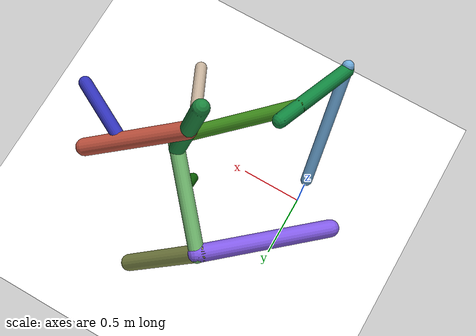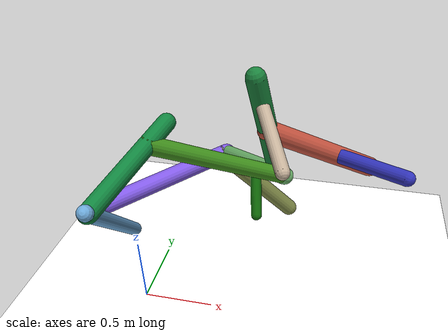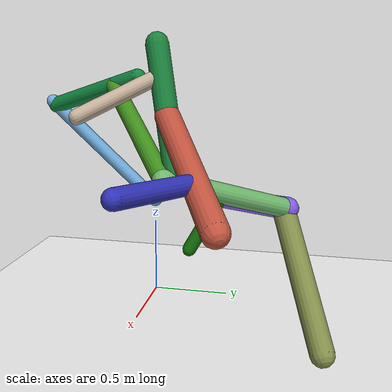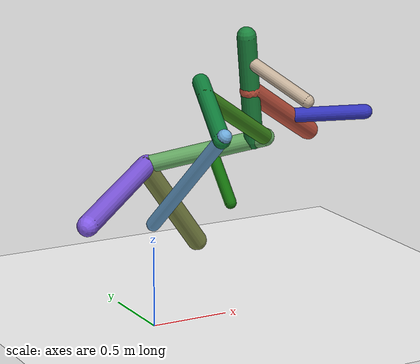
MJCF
<mujoco model="morphology">
  <option timestep="0.01"/>
  <default>
    <default class="/"/>
    <default class="0/"/>
    <default class="0/1/"/>
    <default class="0/1/2/"/>
    <default class="0/1/2/3/"/>
    <default class="0/1/2/3/4/"/>
    <default class="0/1/2/3/4/5/"/>
    <default class="0/1/2/3/4/6/"/>
    <default class="0/1/2/3/4/6/7/"/>
    <default class="0/1/2/3/8/"/>
    <default class="0/1/2/3/8/9/"/>
    <default class="0/1/2/3/10/"/>
  </default>
  <asset>
    <texture name="texplane" type="2d" builtin="checker" rgb1="0.10000000000000001 0.20000000000000001 0.29999999999999999" rgb2="0.20000000000000001 0.29999999999999999 0.40000000000000002" width="300" height="300"/>
    <material name="MatPlane" class="/" texture="texplane" texrepeat="20 20" specular="1" shininess="1" reflectance="0.5"/>
  </asset>
  <worldbody>
    <light name="//unnamed_light_0" class="/" directional="true" pos="0 0 1.5" dir="0 0 -1.3" cutoff="100" exponent="1" diffuse="1 1 1" specular="0.10000000000000001 0.10000000000000001 0.10000000000000001"/>
    <geom name="ground" class="/" type="plane" size="15 15 0.5" material="MatPlane" rgba="1 1 1 1"/>
    <site name="body" class="/" size="9.9999999999999995e-07 9.9999999999999995e-07 9.9999999999999995e-07" pos="0 0 0.64906880855560301"/>
    <body pos="0 0 0.64906880855560301" name="0/">
      <freejoint name="0/"/>
      <geom name="0/geom" class="0/" type="capsule" contype="1" conaffinity="1" condim="3" size="0.04353381015723555" rgba="0.42503061692901922 0.6614471519441858 0.85035949658639498 1" friction="0.59999999999999998 0.10000000000000001 0.10000000000000001" fromto="0 0 0 0.11749952604805358 -0.66464146303834526 0.67153993454337679"/>
      <site name="0/end0" class="0/" size="0.0050000000000000001" pos="0.11749952604805358 -0.66464146303834526 0.67153993454337679"/>
      <site name="0/attach1" class="0/" size="9.9999999999999995e-07 9.9999999999999995e-07 9.9999999999999995e-07" pos="0.11332940405267732 -0.64105297653737203 0.64770661754201631"/>
      <body pos="0.11332940405267732 -0.64105297653737203 0.64770661754201631" name="0/1/">
        <geom name="0/1/geom" class="0/1/" type="capsule" contype="1" conaffinity="1" condim="3" size="0.052210280440735654" rgba="0.061347893849859059 0.51456053378522848 0.24090498683330852 1" friction="0.59999999999999998 0.10000000000000001 0.10000000000000001" fromto="0 0 0 0.20288729687383567 0.62417572491706141 0.19652056738279344"/>
        <site name="0/1/end1" class="0/1/" size="0.0050000000000000001" pos="0.20288729687383567 0.62417572491706141 0.19652056738279344"/>
        <site name="0/1/attach2" class="0/1/" size="9.9999999999999995e-07 9.9999999999999995e-07 9.9999999999999995e-07" pos="0.14735775788725064 0.45334102611965382 0.14273357984687771"/>
        <body pos="0.14735775788725064 0.45334102611965382 0.14273357984687771" name="0/1/2/">
          <joint name="0/1/2/joint/" class="0/1/" type="hinge" axis="2.7755575615628914e-17 -0.30031479760854007 0.95384014506485393" limited="true" range="-35.013465774508759 35.013465774508759"/>
          <geom name="0/1/2/geom" class="0/1/2/" type="capsule" contype="1" conaffinity="1" condim="3" size="0.052699470052900772" rgba="0.25323495684970787 0.56608703312154662 0.11252545274975101 1" friction="0.59999999999999998 0.10000000000000001 0.10000000000000001" fromto="0 0 0 0.69652851433841168 0.49137260228914026 -0.42824395575534918"/>
          <site name="0/1/2/end2" class="0/1/2/" size="0.0050000000000000001" pos="0.69652851433841168 0.49137260228914026 -0.42824395575534918"/>
          <site name="0/1/2/attach3" class="0/1/2/" size="9.9999999999999995e-07 9.9999999999999995e-07 9.9999999999999995e-07" pos="0.69399405321285357 0.48958464281148834 -0.42668570273946499"/>
          <body pos="0.69399405321285357 0.48958464281148834 -0.42668570273946499" name="0/1/2/3/">
            <joint name="0/1/2/3/joint/" class="0/1/2/" type="hinge" axis="0 0.65701998940238215 0.75387315479840078" limited="true" range="-36.421717875796084 36.421717875796084"/>
            <geom name="0/1/2/3/geom" class="0/1/2/3/" type="capsule" contype="1" conaffinity="1" condim="3" size="0.058136188378610273" rgba="0.43210828782000399 0.71075076910117874 0.42200533825455633 1" friction="0.59999999999999998 0.10000000000000001 0.10000000000000001" fromto="0 0 0 -0.54550044891232852 0.62323641745530622 -0.26097306439067891"/>
            <site name="0/1/2/3/end3" class="0/1/2/3/" size="0.0050000000000000001" pos="-0.54550044891232852 0.62323641745530622 -0.26097306439067891"/>
            <site name="0/1/2/3/attach4" class="0/1/2/3/" size="9.9999999999999995e-07 9.9999999999999995e-07 9.9999999999999995e-07" pos="-0.052289979807099214 0.059741508460288077 -0.025016067895809558"/>
            <body pos="-0.052289979807099214 0.059741508460288077 -0.025016067895809558" name="0/1/2/3/4/">
              <joint name="0/1/2/3/4/joint/" class="0/1/2/3/" type="hinge" axis="0 0.38624311599782724 0.92239701611848735" limited="true" range="-47.974241820826222 47.974241820826222"/>
              <geom name="0/1/2/3/4/geom" class="0/1/2/3/4/" type="capsule" contype="1" conaffinity="1" condim="3" size="0.061688310551178724" rgba="0.10577553878162504 0.51197180052503699 0.23789610363448155 1" friction="0.59999999999999998 0.10000000000000001 0.10000000000000001" fromto="0 0 0 -0.131878554910557 -0.13235939071999303 0.70276543950590109"/>
              <site name="0/1/2/3/4/end4" class="0/1/2/3/4/" size="0.0050000000000000001" pos="-0.131878554910557 -0.13235939071999303 0.70276543950590109"/>
              <site name="0/1/2/3/4/attach5" class="0/1/2/3/4/" size="9.9999999999999995e-07 9.9999999999999995e-07 9.9999999999999995e-07" pos="-0.10247542711632876 -0.10284905765071095 0.54607960046881554"/>
              <body pos="-0.10247542711632876 -0.10284905765071095 0.54607960046881554" name="0/1/2/3/4/5/">
                <joint name="0/1/2/3/4/5/joint/" class="0/1/2/3/4/" type="hinge" axis="0.98341746940689378 -0.033566619236143375 0.17822279017677883" limited="true" range="-64.010133863230934 64.010133863230934"/>
                <geom name="0/1/2/3/4/5/geom" class="0/1/2/3/4/5/" type="capsule" contype="1" conaffinity="1" condim="3" size="0.041797088924894275" rgba="0.76428675282517922 0.68625831401048942 0.59904685848753081 1" friction="0.59999999999999998 0.10000000000000001 0.10000000000000001" fromto="0 0 0 0.19149675959025592 -0.39809810202148976 -0.20507818736346639"/>
                <site name="0/1/2/3/4/5/end5" class="0/1/2/3/4/5/" size="0.0050000000000000001" pos="0.19149675959025592 -0.39809810202148976 -0.20507818736346639"/>
              </body>
              <site name="0/1/2/3/4/attach6" class="0/1/2/3/4/" size="9.9999999999999995e-07 9.9999999999999995e-07 9.9999999999999995e-07" pos="-0.064209170482306011 -0.064443280330438751 0.34216318145820768"/>
              <body pos="-0.064209170482306011 -0.064443280330438751 0.34216318145820768" name="0/1/2/3/4/6/">
                <joint name="0/1/2/3/4/6/joint/" class="0/1/2/3/4/" type="hinge" axis="0.98341746940689378 -0.033566619236143375 0.17822279017677883" limited="true" range="-56.349977757106686 56.349977757106686"/>
                <geom name="0/1/2/3/4/6/geom" class="0/1/2/3/4/6/" type="capsule" contype="1" conaffinity="1" condim="3" size="0.066744560987104767" rgba="0.76347377090547075 0.32704354800325064 0.24831995658214856 1" friction="0.59999999999999998 0.10000000000000001 0.10000000000000001" fromto="0 0 0 0.66442338285563474 0.37356227437051204 -0.40888148541910319"/>
                <site name="0/1/2/3/4/6/end6" class="0/1/2/3/4/6/" size="0.0050000000000000001" pos="0.66442338285563474 0.37356227437051204 -0.40888148541910319"/>
                <site name="0/1/2/3/4/6/attach7" class="0/1/2/3/4/6/" size="9.9999999999999995e-07 9.9999999999999995e-07 9.9999999999999995e-07" pos="0.4177919082263275 0.23489735532762573 -0.25710620733644413"/>
                <body pos="0.4177919082263275 0.23489735532762573 -0.25710620733644413" name="0/1/2/3/4/6/7/">
                  <joint name="0/1/2/3/4/6/7/joint/" class="0/1/2/3/4/6/" type="hinge" axis="-0.64028572572043141 0.51810938647508875 -0.5670951005652114" limited="true" range="-69.634578316270762 69.634578316270762"/>
                  <geom name="0/1/2/3/4/6/7/geom" class="0/1/2/3/4/6/7/" type="capsule" contype="1" conaffinity="1" condim="3" size="0.048749419910886452" rgba="0.19218810282955778 0.19792748503047841 0.72079480146233421 1" friction="0.59999999999999998 0.10000000000000001 0.10000000000000001" fromto="0 0 0 0.44896637801157824 -0.23714185870602322 0.025332695794505367"/>
                  <site name="0/1/2/3/4/6/7/end7" class="0/1/2/3/4/6/7/" size="0.0050000000000000001" pos="0.44896637801157824 -0.23714185870602322 0.025332695794505367"/>
                </body>
              </body>
            </body>
            <site name="0/1/2/3/attach8" class="0/1/2/3/" size="9.9999999999999995e-07 9.9999999999999995e-07 9.9999999999999995e-07" pos="-0.53721839416222938 0.61377413719153673 -0.25701084362276871"/>
            <body pos="-0.53721839416222938 0.61377413719153673 -0.25701084362276871" name="0/1/2/3/8/">
              <joint name="0/1/2/3/8/joint/" class="0/1/2/3/" type="hinge" axis="0 0.38624311599782724 0.92239701611848735" limited="true" range="-48.1372088508638 48.1372088508638"/>
              <geom name="0/1/2/3/8/geom" class="0/1/2/3/8/" type="capsule" contype="1" conaffinity="1" condim="3" size="0.067121555891221374" rgba="0.50625743752202923 0.35397650673866765 0.89687474570462988 1" friction="0.59999999999999998 0.10000000000000001 0.10000000000000001" fromto="0 0 0 -0.74668683699757277 -0.68239877641274826 -0.13359737917838643"/>
              <site name="0/1/2/3/8/end8" class="0/1/2/3/8/" size="0.0050000000000000001" pos="-0.74668683699757277 -0.68239877641274826 -0.13359737917838643"/>
              <site name="0/1/2/3/8/attach9" class="0/1/2/3/8/" size="9.9999999999999995e-07 9.9999999999999995e-07 9.9999999999999995e-07" pos="-0.027859291932822196 -0.025460669432887315 -0.0049845908667099058"/>
              <body pos="-0.027859291932822196 -0.025460669432887315 -0.0049845908667099058" name="0/1/2/3/8/9/">
                <joint name="0/1/2/3/8/9/joint/" class="0/1/2/3/8/" type="hinge" axis="0.68150368145815321 -0.71818077786883927 -0.14060264029772873" limited="true" range="-31.084543222653444 31.084543222653444"/>
                <geom name="0/1/2/3/8/9/geom" class="0/1/2/3/8/9/" type="capsule" contype="1" conaffinity="1" condim="3" size="0.067862349611785874" rgba="0.50615900033679884 0.54600436833034682 0.28551519251840218 1" friction="0.59999999999999998 0.10000000000000001 0.10000000000000001" fromto="0 0 0 0.52822782808559698 0.26385137302484152 -0.65082787301651535"/>
                <site name="0/1/2/3/8/9/end9" class="0/1/2/3/8/9/" size="0.0050000000000000001" pos="0.52822782808559698 0.26385137302484152 -0.65082787301651535"/>
              </body>
            </body>
            <site name="0/1/2/3/attach10" class="0/1/2/3/" size="9.9999999999999995e-07 9.9999999999999995e-07 9.9999999999999995e-07" pos="-0.24094950233471968 0.27528575810001643 -0.11527273737918953"/>
            <body pos="-0.24094950233471968 0.27528575810001643 -0.11527273737918953" name="0/1/2/3/10/">
              <joint name="0/1/2/3/10/joint/" class="0/1/2/3/" type="hinge" axis="0 0.38624311599782724 0.92239701611848735" limited="true" range="-66.319837666114751 66.319837666114751"/>
              <geom name="0/1/2/3/10/geom" class="0/1/2/3/10/" type="capsule" contype="1" conaffinity="1" condim="3" size="0.038943952715266267" rgba="0.072396381652317765 0.43721621056915627 0.040539200883128013 1" friction="0.59999999999999998 0.10000000000000001 0.10000000000000001" fromto="0 0 0 0.044442849806585416 -0.1772830740368283 -0.3186577304917288"/>
              <site name="0/1/2/3/10/end10" class="0/1/2/3/10/" size="0.0050000000000000001" pos="0.044442849806585416 -0.1772830740368283 -0.3186577304917288"/>
            </body>
          </body>
        </body>
      </body>
      <camera name="0/iso" class="0/" mode="trackcom" pos="-2.2999999999999998 -2.2999999999999998 1" xyaxes="0.45000000000000001 -0.45000000000000001 0 0.29999999999999999 0.14999999999999999 0.93999999999999995"/>
    </body>
  </worldbody>
  <actuator>
    <motor name="0/1/2/motor" class="0/1/2/" ctrllimited="true" ctrlrange="-1 1" gear="81" joint="0/1/2/joint/"/>
    <motor name="0/1/2/3/motor" class="0/1/2/3/" ctrllimited="true" ctrlrange="-1 1" gear="50" joint="0/1/2/3/joint/"/>
    <motor name="0/1/2/3/4/motor" class="0/1/2/3/4/" ctrllimited="true" ctrlrange="-1 1" gear="93" joint="0/1/2/3/4/joint/"/>
    <motor name="0/1/2/3/4/5/motor" class="0/1/2/3/4/5/" ctrllimited="true" ctrlrange="-1 1" gear="61" joint="0/1/2/3/4/5/joint/"/>
    <motor name="0/1/2/3/4/6/motor" class="0/1/2/3/4/6/" ctrllimited="true" ctrlrange="-1 1" gear="74" joint="0/1/2/3/4/6/joint/"/>
    <motor name="0/1/2/3/4/6/7/motor" class="0/1/2/3/4/6/7/" ctrllimited="true" ctrlrange="-1 1" gear="78" joint="0/1/2/3/4/6/7/joint/"/>
    <motor name="0/1/2/3/8/motor" class="0/1/2/3/8/" ctrllimited="true" ctrlrange="-1 1" gear="93" joint="0/1/2/3/8/joint/"/>
    <motor name="0/1/2/3/8/9/motor" class="0/1/2/3/8/9/" ctrllimited="true" ctrlrange="-1 1" gear="99" joint="0/1/2/3/8/9/joint/"/>
    <motor name="0/1/2/3/10/motor" class="0/1/2/3/10/" ctrllimited="true" ctrlrange="-1 1" gear="65" joint="0/1/2/3/10/joint/"/>
  </actuator>
  <sensor>
    <subtreelinvel name="velocity" body="0/"/>
  </sensor>
</mujoco>
